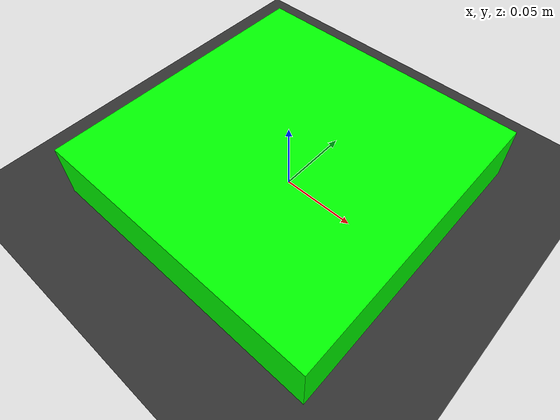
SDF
<?xml version="1.0" ?>
<sdf version="1.8">
    <world name="calibration_bay">
        <physics name="1ms" type="ignored">
            <max_step_size>0.001</max_step_size>
            <real_time_factor>1.0</real_time_factor>
        </physics>
        <plugin filename="gz-sim-physics-system" name="gz::sim::systems::Physics"/>
        <plugin filename="gz-sim-sensors-system" name="gz::sim::systems::Sensors">
            <render_engine>ogre2</render_engine>
        </plugin>
        <plugin filename="gz-sim-user-commands-system" name="gz::sim::systems::UserCommands"/>
        <plugin filename="gz-sim-scene-broadcaster-system" name="gz::sim::systems::SceneBroadcaster"/>
        <plugin filename="gz-sim-contact-system" name="gz::sim::systems::Contact"/>
        <plugin filename="gz-sim-imu-system" name="gz::sim::systems::Imu"/>
        <light type="directional" name="sun">
            <cast_shadows>true</cast_shadows>
            <pose>0 0 10 0 0 0</pose>
            <diffuse>0.8 0.8 0.8 1</diffuse>
            <specular>0.2 0.2 0.2 1</specular>
            <direction>-0.5 0.1 -0.9</direction>
        </light>

        <model name="ground_plane">
            <static>true</static>
            <link name="link">
                <collision name="collision">
                    <geometry><plane><normal>0 0 1</normal><size>100 100</size></plane></geometry>
                </collision>
                <visual name="visual">
                    <geometry><plane><normal>0 0 1</normal><size>100 100</size></plane></geometry>
                    <material><ambient>0.2 0.2 0.2 1</ambient><diffuse>0.2 0.2 0.2 1</diffuse><specular>0.8 0.8 0.8 1</specular></material>
                </visual>
            </link>
        </model>

        <model name="dumpster">
            <static>true</static>
            <pose>0.0 0.0 0.02 0 0 0</pose>
            <link name="link">
                <visual name="visual">
                    <geometry><box><size>0.2 0.2 0.04</size></box></geometry>
                    <material><ambient>0 1 0 1</ambient><diffuse>0 1 0 1</diffuse></material>
                </visual>
            </link>
        </model>
    </world>
</sdf>
